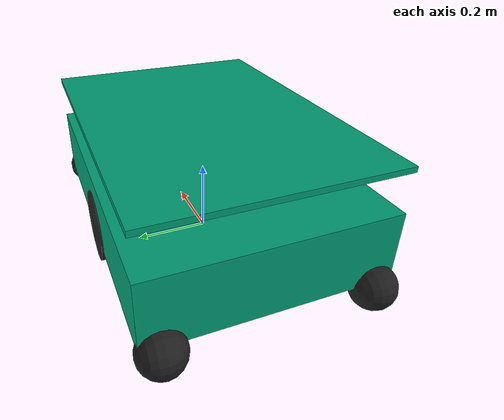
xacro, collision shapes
<?xml version="1.0"?>
<robot xmlns:xacro="http://www.ros.org/wiki/xacro" name="bcr_bot">

    <!--................................ XACRO CONSTANTS .............................. -->

    <xacro:property name="chassis_mass" value="70"/>
    <xacro:property name="chassis_length" value="0.9"/>
    <xacro:property name="chassis_width" value="0.64"/>
    <xacro:property name="chassis_height" value="0.19"/>

    <xacro:property name="traction_wheel_mass" value="1"/>
    <xacro:property name="traction_wheel_base" value="0.88"/>
    <xacro:property name="traction_max_wheel_torque" value="20000"/>
    <xacro:property name="traction_wheel_friction" value="5.0"/>

    <xacro:property name="trolley_wheel_mass" value="0.1"/>
    <xacro:property name="trolley_track_width" value="0.54"/>
    <xacro:property name="trolley_wheel_friction" value="0.0"/>
    <xacro:property name="trolley_wheel_radius" value="0.06"/>
    <!-- a small constant -->
    <xacro:property name="eps" value="0.002"/>

    <xacro:property name="traction_wheel_radius" value="0.1"/>
    <xacro:property name="traction_wheel_width" value="0.05"/>
    <xacro:property name="traction_track_width" value="0.6"/>

    <xacro:property name="two_d_lidar_update_rate" value="30"/>
    <xacro:property name="two_d_lidar_sample_size" value="361"/>
    <xacro:property name="two_d_lidar_min_angle" value="0"/>
    <xacro:property name="two_d_lidar_max_angle" value="360"/>
    <xacro:property name="two_d_lidar_min_range" value="0.55"/>
    <xacro:property name="two_d_lidar_max_range" value="16"/>

    <xacro:property name="camera_baseline" value="0.06"/>
    <xacro:property name="camera_height" value="0.10"/>
    <xacro:property name="camera_horizontal_fov" value="60"/>

    <xacro:arg name="robot_namespace" default=""/>
    <xacro:arg name="wheel_odom_topic" default="odom" />
    <xacro:arg name="camera_enabled" default="false" />
    <xacro:arg name="stereo_camera_enabled" default="false" />
    <xacro:arg name="two_d_lidar_enabled" default="false" />
    <xacro:arg name="publish_wheel_odom_tf" default="true" />
    <xacro:arg name="conveyor_enabled" default="false"/>
    <xacro:arg name="ground_truth_frame" default="map"/>
    <xacro:arg name="sim_gazebo" default="false" />
    <xacro:arg name="sim_ign" default="false" />
    <xacro:arg name="sim_gz" default="false" />
    <xacro:arg name="odometry_source" default="world" />

    <xacro:property name="odometry_source" value="$(arg odometry_source)"/>
    <xacro:property name="robot_namespace" value="$(arg robot_namespace)"/>
    <xacro:property name="prefix" value="${robot_namespace + '/' if robot_namespace else ''}"/>

    <!-- ............................... LOAD MACROS ................................. -->

    <xacro:include filename="$(find bcr_bot)/urdf/materials.xacro"/>
    <xacro:include filename="$(find bcr_bot)/urdf/macros.xacro"/>
    <xacro:include filename="$(find bcr_bot)/urdf/gz_ns.xacro"/>

    <!-- ................................ BASE LINK .................................. -->
    <link name="${prefix}base_footprint"/>

    <link name="${prefix}base_link"/>

    <joint name="${prefix}base_joint" type="fixed">
        <parent link="${prefix}base_footprint"/>
        <child link="${prefix}base_link"/>
        <origin xyz="0.0 0 ${chassis_height/2 + traction_wheel_radius}" rpy="0 0 0.0" />
    </joint>

    <link name="${prefix}chassis_link">

        <collision>
            <origin xyz="0 0 -0.05" rpy="0 0 0" />
            <geometry>
                <box size="${chassis_length} ${chassis_width} ${chassis_height}"/>
            </geometry>
        </collision>

        <visual>
            <origin xyz="0 0 -0.205" rpy="0 0 0" />
            <geometry>
                <mesh filename="file://$(find bcr_bot)/meshes/bcr_bot_mesh.dae" scale="1 1 1"/>
            </geometry>
        </visual>

        <inertial>
            <mass value="${chassis_mass}" />
            <xacro:box_inertia m="${chassis_mass}" x="${chassis_length}" y="${chassis_width}" z = "${chassis_height}"/>
        </inertial>

    </link>

    <joint name="${prefix}chassis_joint" type="fixed">
        <parent link="${prefix}base_link"/>
        <child link="${prefix}chassis_link"/>
        <origin xyz="0.0 0 0" rpy="0 0 0.0" />
    </joint>

    <!-- ................................ WHEELS ..................................... -->

    <xacro:trolley_wheel cardinality="front" dexterity="left" origin_x="${chassis_length/2}" origin_y="${trolley_track_width/2}" origin_z="-${trolley_wheel_radius+chassis_height/2}" prefix="${prefix}"/>
    <xacro:trolley_wheel cardinality="front" dexterity="right" origin_x="${chassis_length/2}" origin_y="-${trolley_track_width/2}" origin_z="-${trolley_wheel_radius+chassis_height/2}" prefix="${prefix}"/>

    <xacro:trolley_wheel cardinality="back" dexterity="left" origin_x="-${chassis_length/2}" origin_y="${trolley_track_width/2}" origin_z="-${trolley_wheel_radius+chassis_height/2}" prefix="${prefix}"/>
    <xacro:trolley_wheel cardinality="back" dexterity="right" origin_x="-${chassis_length/2}" origin_y="-${trolley_track_width/2}" origin_z="-${trolley_wheel_radius+chassis_height/2}" prefix="${prefix}"/>

    <xacro:traction_wheel cardinality="middle" dexterity="left" origin_x="0" origin_y="${traction_track_width/2}" origin_z="-${chassis_height/2+2*trolley_wheel_radius+eps-traction_wheel_radius}" prefix="${prefix}"/>
    <xacro:traction_wheel cardinality="middle" dexterity="right" origin_x="0" origin_y="-${traction_track_width/2}" origin_z="-${chassis_height/2+2*trolley_wheel_radius+eps-traction_wheel_radius}" prefix="${prefix}"/>

    <!-- ............................. 2D LIDAR ........................................ -->

    <xacro:if value="$(arg two_d_lidar_enabled)">

        <link name="${prefix}two_d_lidar">
            <collision>
                <origin xyz="0 0 0" rpy="0 0 0" />
                <geometry>
                    <cylinder length="0.06" radius="0.075"/>
                </geometry>
            </collision>

            <visual>
                <origin xyz="0 0 0" rpy="0 0 0" />
                <geometry>
                    <cylinder length="0.06" radius="0.075"/>
                </geometry>
                <material name="aluminium"/>
            </visual>

            <inertial>
                <origin xyz="0 0 0" rpy="0 0 0" />
                <mass value="0.1"/>
                <xacro:cylinder_inertia m="0.1" r="0.075" h="0.06"/>
            </inertial>
        </link>

        <joint name="${prefix}two_d_lidar_joint" type="fixed">
            <parent link="${prefix}base_link"/>
            <child link="${prefix}two_d_lidar"/>
            <origin xyz="0.0 0 0.08" rpy="0 0 0" />
        </joint>

        <gazebo reference="${prefix}two_d_lidar">
            <material>Gazebo/White</material>
        </gazebo>

    </xacro:if>

    <!-- ............................. IMU ........................................ -->

    <link name="${prefix}imu_frame"/>

    <joint name="${prefix}imu_joint" type="fixed">
        <parent link="${prefix}base_link"/>
        <child link="${prefix}imu_frame"/>
        <origin xyz="0.0 0.0 0.08" rpy="0.0 0.0 0.0"/>
    </joint>

    <!-- ............................. CAMERA ........................................ -->

    <xacro:if value="$(arg camera_enabled)">

        <!-- KINECT CAMERA -->

        <link name="${prefix}kinect_camera">

            <collision>
                <origin xyz="0 0 0" rpy="0 0 0" />
                <geometry>
                    <box size="0.07 0.3 0.09"/>
                </geometry>
            </collision>

            <visual>
                <origin xyz="0 0 0" rpy="0 0 0" />
                <geometry>
                    <mesh filename="file://$(find bcr_bot)/meshes/kinect/d415.dae"/>
                </geometry>
                <material name="black"/>
            </visual>

            <inertial>
                <mass value="0.01"/>
                <xacro:box_inertia m="0.01" x="0.07" y="0.3" z = "0.09"/>
            </inertial>

        </link>

        <joint name="${prefix}kinect_camera_joint" type="fixed">
            <origin rpy="0 0 0" xyz="${chassis_length/2} 0 ${chassis_height/7}"/>
            <parent link="${prefix}base_link"/>
            <child link="${prefix}kinect_camera"/>
        </joint>

        <link name="${prefix}kinect_camera_optical"/>

        <joint name="${prefix}kinect_camera_optical_joint" type="fixed">
            <origin xyz="0 0 0" rpy="${-pi/2} 0 ${-pi/2}"/>
            <parent link="${prefix}kinect_camera"/>
            <child link="${prefix}kinect_camera_optical"/>
        </joint>

    </xacro:if>

    <!-- .............................STEREO CAMERA ........................................ -->

    <xacro:if value="$(arg stereo_camera_enabled)">

        <!-- STEREO CAMERA -->

        <link name="${prefix}stereo_camera">

            <collision>
                <origin xyz="0 0 0" rpy="0 0 0" />
                <geometry>
                    <box size="0.07 0.3 0.09"/>
                </geometry>
            </collision>

            <visual>
                <origin xyz="0 0 0" rpy="0 0 0" />
                <geometry>
                    <mesh filename="file://$(find bcr_bot)/meshes/kinect/d415.dae"/>
                </geometry>
                <material name="black"/>
            </visual>

            <inertial>
                <mass value="0.01"/>
                <xacro:box_inertia m="0.01" x="0.07" y="0.3" z = "0.09"/>
            </inertial>

        </link>

        <joint name="${prefix}stereo_camera_joint" type="fixed">
            <origin rpy="0 0 0" xyz="${chassis_length/2} 0 ${chassis_height/7}"/>
            <parent link="${prefix}base_link"/>
            <child link="${prefix}stereo_camera"/>
        </joint>

        <link name="${prefix}stereo_camera_optical"/>

        <joint name="${prefix}stereo_camera_optical_joint" type="fixed">
            <origin xyz="0 0 0" rpy="${-pi/2} 0 ${-pi/2}"/>
            <parent link="${prefix}stereo_camera"/>
            <child link="${prefix}stereo_camera_optical"/>
        </joint>

    </xacro:if>

    <!-- ............................. ROOF ........................................ -->

    <link name="${prefix}roof_link">

        <collision>
            <origin xyz="0 0 0" rpy="0 0 0" />
            <geometry>
                <box size="${chassis_length} ${chassis_width} 0.015"/>
            </geometry>
        </collision>

        <inertial>
            <mass value="1"/>
            <xacro:box_inertia m="1" x="1" y="0.6" z = "0.015"/>
        </inertial>

    </link>

    <joint name="${prefix}roof_joint" type="fixed">
        <parent link="${prefix}chassis_link"/>
        <child link="${prefix}roof_link"/>
        <origin xyz="0 0 0.16" rpy="0 0 0" />
    </joint>

    <!-- ............................. CONVEYOR ........................................ -->

    <xacro:if value="$(arg conveyor_enabled)">

        <link name="${prefix}conveyor_belt">

            <collision>
                <origin xyz="0 0 0" rpy="0 0 0" />
                <geometry>
                    <box size="1 0.6 0.015"/>
                </geometry>
            </collision>

            <visual>
                <origin xyz="0 0 0" rpy="0 0 0"/>
                <geometry>
                    <box size="1 0.6 0.015"/>
                </geometry>
            </visual>

            <inertial>
                <mass value="1"/>
                <xacro:box_inertia m="1" x="1" y="0.6" z = "0.015"/>
            </inertial>

        </link>

        <joint name="${prefix}conveyor_joint" type="fixed">
            <parent link="${prefix}base_link"/>
            <child link="${prefix}conveyor_belt"/>
            <origin xyz="0 0 0.25" rpy="0 0 0" />
        </joint>

    </xacro:if>

</robot>

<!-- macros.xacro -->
<robot xmlns:xacro="http://www.ros.org/wiki/xacro" name="bcr_bot">

    <!--................................ INERTIA MATRICES .............................. -->

    <xacro:macro name="cylinder_inertia" params="m r h">
        <inertia ixx="${m * (3 * r * r + h * h) / 12}" ixy="0" ixz="0" iyy="${m * (3 * r * r + h * h) / 12}" iyz="0" izz="${m * r * r / 2}" />
    </xacro:macro>

    <xacro:macro name="box_inertia" params="m x y z">
        <inertia ixx="${m * (y * y + z * z) / 12}" ixy="0" ixz="0" iyy="${m * (x * x + z * z) / 12}" iyz="0" izz="${m * (y * y + x * x) / 12}" />
    </xacro:macro>

    <xacro:macro name="sphere_inertia" params="m r">
        <inertia ixx="${2 * m * r * r / 5}" ixy="0" ixz="0" iyy="${2 * m * r * r / 5}" iyz="0" izz="${2 * m * r * r / 5}" />
    </xacro:macro>

    <!-- ............................... TROLLEY WHEEL DEFINITION .............................. -->

    <xacro:macro name="trolley_wheel" params="cardinality dexterity origin_x origin_y origin_z prefix:=''">
        <link name="${prefix}${cardinality}_${dexterity}_wheel">
            <collision>
                <origin xyz="0 0 0" rpy="0 ${pi/2} ${pi/2}" />
                <geometry>
                    <sphere radius="${trolley_wheel_radius}"/>
                </geometry>
            </collision>

            <inertial>
                <origin xyz="0 0 0" rpy="0 0 0" />
                <mass value="${trolley_wheel_mass}"/>
                <xacro:sphere_inertia m="${trolley_wheel_mass}" r="${trolley_wheel_radius}"/>
            </inertial>

            <mu>0.0</mu>
        </link>

        <joint name="${prefix}${cardinality}_${dexterity}_wheel_joint" type="fixed">
            <parent link="${prefix}base_link"/>
            <child link="${prefix}${cardinality}_${dexterity}_wheel"/>
            <origin xyz="${origin_x} ${origin_y} ${origin_z}" rpy="0 0 0" />
            <axis xyz="0 1 0" rpy="0 0 0" />
        </joint>

        <gazebo reference="${prefix}${cardinality}_${dexterity}_wheel">
            <material>Gazebo/Black</material>
        </gazebo>
    </xacro:macro>

    <xacro:macro name="traction_wheel" params="cardinality dexterity origin_x origin_y origin_z prefix:=''">
        <link name="${prefix}${cardinality}_${dexterity}_wheel">
            <collision>
                <origin xyz="0 0 0" rpy="0 ${pi/2} ${pi/2}" />
                <geometry>
                    <cylinder length="${traction_wheel_width}" radius="${traction_wheel_radius}"/>
                </geometry>
                <self_collide>false</self_collide>
            </collision>

            <inertial>
                <origin xyz="0 0 0" rpy="0 ${pi/2} ${pi/2}" />
                <mass value="${traction_wheel_mass}"/>
                <xacro:cylinder_inertia m="${traction_wheel_mass}" r="${traction_wheel_radius}" h="${traction_wheel_width}"/>
            </inertial>

            <mu>5.0</mu>
        </link>

        <joint name="${prefix}${cardinality}_${dexterity}_wheel_joint" type="continuous">
            <parent link="${prefix}base_link"/>
            <child link="${prefix}${cardinality}_${dexterity}_wheel"/>
            <origin xyz="${origin_x} ${origin_y} ${origin_z}" rpy="0 0 0" />
            <axis xyz="0 1 0" rpy="0 0 0" />
        </joint>

        <gazebo reference="${prefix}${cardinality}_${dexterity}_wheel">
            <material>Gazebo/Black</material>
        </gazebo>
    </xacro:macro>

</robot>

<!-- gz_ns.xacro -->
<robot xmlns:xacro="http://www.ros.org/wiki/xacro" name="bcr_bot">

    <!-- Argumento para el namespace del robot -->
    <xacro:arg name="robot_namespace" default="bcr_bot"/>
    <xacro:property name="robot_namespace" value="$(arg robot_namespace)"/>
    <xacro:property name="prefix" value="${robot_namespace + '/' if robot_namespace else ''}"/>

    <!-- ........................... SENSOR PLUGIN ................................... -->

    <gazebo>
        <plugin filename="gz-sim-sensors-system" name="gz::sim::systems::Sensors">
            <render_engine>ogre2</render_engine>
        </plugin>

        <plugin filename="gz-sim-imu-system" name="gz::sim::systems::Imu">
        </plugin>

        <plugin filename="gz-sim-joint-state-publisher-system" name="gz::sim::systems::JointStatePublisher">
        </plugin>

        <!-- ........................... DIFFERENTIAL DRIVE PLUGIN ................................... -->

        <plugin filename="gz-sim-diff-drive-system" name="gz::sim::systems::DiffDrive">
            <left_joint>${prefix}middle_left_wheel_joint</left_joint>
            <right_joint>${prefix}middle_right_wheel_joint</right_joint>
            <wheel_separation>${traction_track_width+traction_wheel_width-0.01}</wheel_separation>
            <wheel_radius>${traction_wheel_radius+0.01}</wheel_radius>
            <odom_publish_frequency>30</odom_publish_frequency>

            <!-- Topics con namespace del robot -->
            <topic>$(arg robot_namespace)/cmd_vel</topic>

            <xacro:if value="${odometry_source == 'encoders'}">
                <odom_topic>$(arg robot_namespace)/odometry</odom_topic>
                <tf_topic>$(arg robot_namespace)/tf</tf_topic>
            </xacro:if>

            <!-- Frames con namespace -->
            <frame_id>$(arg robot_namespace)/odom</frame_id>
            <child_frame_id>$(arg robot_namespace)/base_footprint</child_frame_id>
        </plugin>
    </gazebo>

    <!-- ............................. ground truth .................................... -->

    <xacro:if value="${odometry_source == 'world'}">
    <gazebo>
        <plugin filename="libgz-sim-odometry-publisher-system"
            name="gz::sim::systems::OdometryPublisher">
            <!-- Frames con namespace -->
            <odom_frame>$(arg robot_namespace)/odom</odom_frame>
            <robot_base_frame>$(arg robot_namespace)/base_footprint</robot_base_frame>

            <!-- Topics con namespace -->
            <odom_topic>$(arg robot_namespace)/odometry</odom_topic>
            <tf_topic>$(arg robot_namespace)/tf</tf_topic>

            <dimensions>2</dimensions>
            <odom_publish_frequency>10</odom_publish_frequency>
        </plugin>
    </gazebo>
    </xacro:if>

    <!-- ........................... 2D LIDAR config ................................... -->

    <xacro:if value="$(arg two_d_lidar_enabled)">
        <gazebo reference="${prefix}two_d_lidar">
            <sensor name='gpu_lidar' type='gpu_lidar'>
                <pose>0 0 0 0 0 0</pose>
                <topic>$(arg robot_namespace)/scan</topic>
                <update_rate>${two_d_lidar_update_rate}</update_rate>
                <lidar>
                    <scan>
                        <horizontal>
                            <samples>${two_d_lidar_sample_size}</samples>
                            <resolution>1</resolution>
                            <min_angle>${radians(two_d_lidar_min_angle)}</min_angle>
                            <max_angle>${radians(two_d_lidar_max_angle)}</max_angle>
                        </horizontal>
                    </scan>
                    <range>
                        <min>${two_d_lidar_min_range}</min>
                        <max>${two_d_lidar_max_range}</max>
                        <resolution>0.01</resolution>
                    </range>
                    <noise>
                        <type>gaussian</type>
                        <mean>0.0</mean>
                        <stddev>0.001</stddev>
                    </noise>
                </lidar>
                <always_on>1</always_on>
                <visualize>true</visualize>
            </sensor>
        </gazebo>
    </xacro:if>

    <!-- ........................... CAMERA config ................................... -->

    <xacro:if value="$(arg camera_enabled)">
        <gazebo reference="${prefix}kinect_camera">
            <sensor type="depth_camera" name="kinect_camera">
                <update_rate>30.0</update_rate>
                <always_on>1</always_on>
                <visualize>true</visualize>

                <!-- Topic con namespace -->
                <topic>$(arg robot_namespace)/kinect_camera</topic>

                <!-- Pose del sensor relativo al link -->
                <pose>0 0 0 0 0 0</pose>

                <camera name="kinect_camera">
                    <horizontal_fov>${radians(camera_horizontal_fov)}</horizontal_fov>
                    <image>
                        <width>640</width>
                        <height>480</height>
                        <format>R8G8B8</format>
                    </image>
                    <clip>
                        <near>0.05</near>
                        <far>8.0</far>
                    </clip>
                    <depth_camera>
                        <clip>
                            <near>0.05</near>
                            <far>8.0</far>
                        </clip>
                    </depth_camera>
                    <distortion>
                        <k1>0.0</k1>
                        <k2>0.0</k2>
                        <k3>0.0</k3>
                        <p1>0.0</p1>
                        <p2>0.0</p2>
                        <center>0.5 0.5</center>
                    </distortion>
                    <lens>
                        <intrinsics>
                            <fx>554.25</fx>
                            <fy>554.25</fy>
                            <cx>320.5</cx>
                            <cy>240.5</cy>
                            <s>0</s>
                        </intrinsics>
                    </lens>
                </camera>
            </sensor>
        </gazebo>
    </xacro:if>

    <!-- ........................... IMU config ................................... -->

    <gazebo reference="${prefix}imu_frame">
        <sensor name="imu_sensor" type="imu">
            <always_on>1</always_on>
            <update_rate>1</update_rate>

            <visualize>true</visualize>

            <!-- Topic con namespace -->
            <topic>$(arg robot_namespace)/imu</topic>
        </sensor>
    </gazebo>

    <!-- ........................... Stereo camera ................................... -->
    <xacro:if value="$(arg stereo_camera_enabled)">
        <gazebo reference="${prefix}stereo_camera">
            <sensor type="camera" name="right">
                <update_rate>10.0</update_rate>
                <always_on>true</always_on>

                <pose>0 -0.12 0 0 0 0</pose>

                <!-- Topics con namespace -->
                <topic>$(arg robot_namespace)/stereo_camera/right/image_raw</topic>

                <camera name="right_camera">
                    <horizontal_fov>1.3962634</horizontal_fov>
                    <image>
                        <width>1024</width>
                        <height>1024</height>
                        <format>R8G8B8</format>
                    </image>
                    <clip>
                        <near>0.3</near>
                        <far>20</far>
                    </clip>
                </camera>
            </sensor>

            <sensor type="camera" name="left">
                <!-- Topics con namespace -->
                <topic>$(arg robot_namespace)/stereo_camera/left/image_raw</topic>

                <update_rate>10.0</update_rate>
                <always_on>true</always_on>

                <pose>0 0 0 0 0 0</pose>

                <camera name="left_camera">
                    <horizontal_fov>1.3962634</horizontal_fov>
                    <image>
                        <width>1024</width>
                        <height>1024</height>
                        <format>R8G8B8</format>
                    </image>
                    <clip>
                        <near>0.3</near>
                        <far>20</far>
                    </clip>
                </camera>
            </sensor>
        </gazebo>
    </xacro:if>
</robot>
